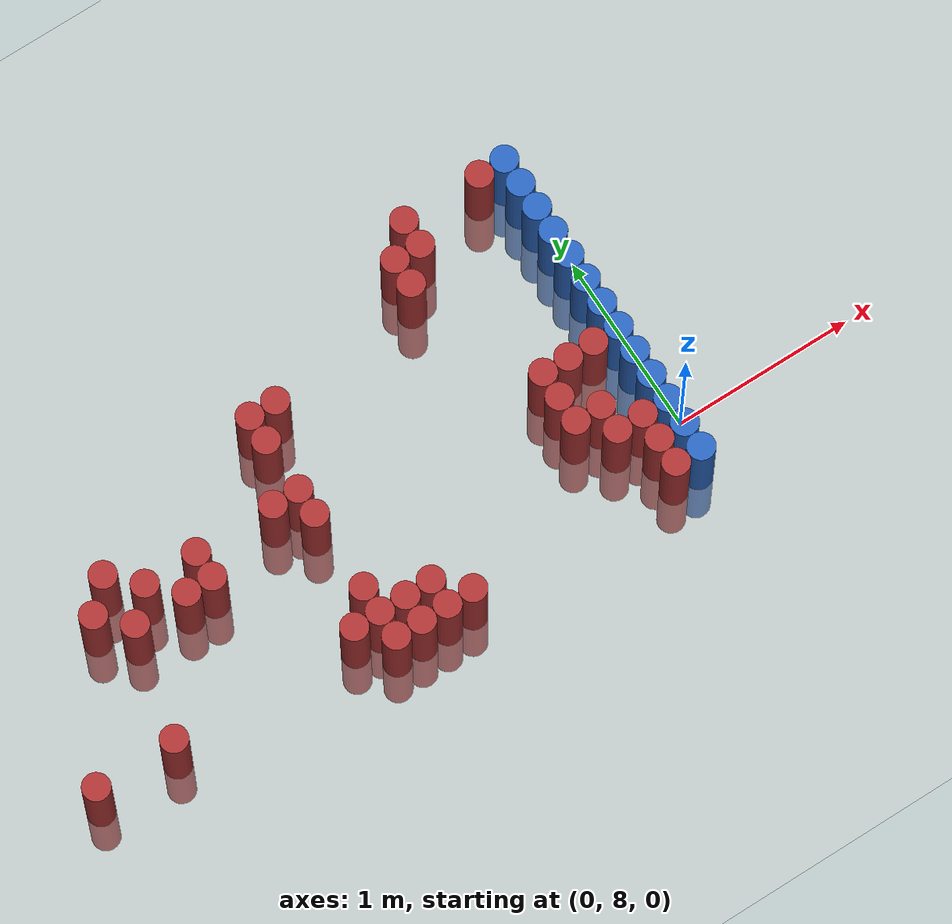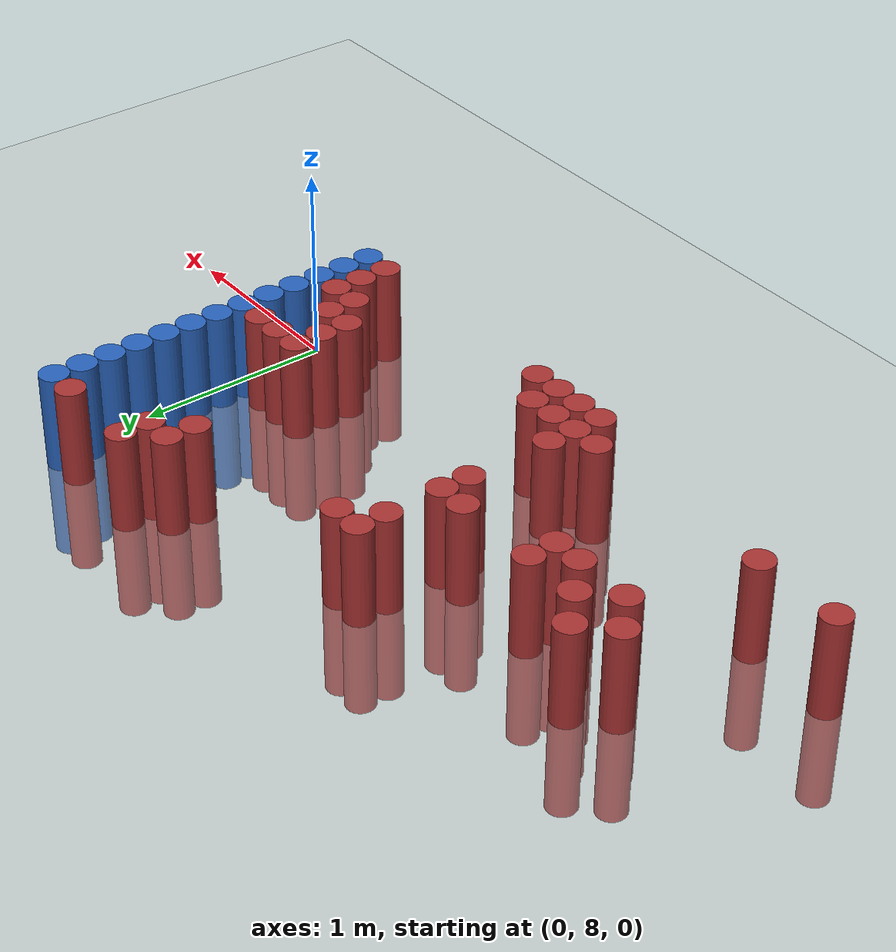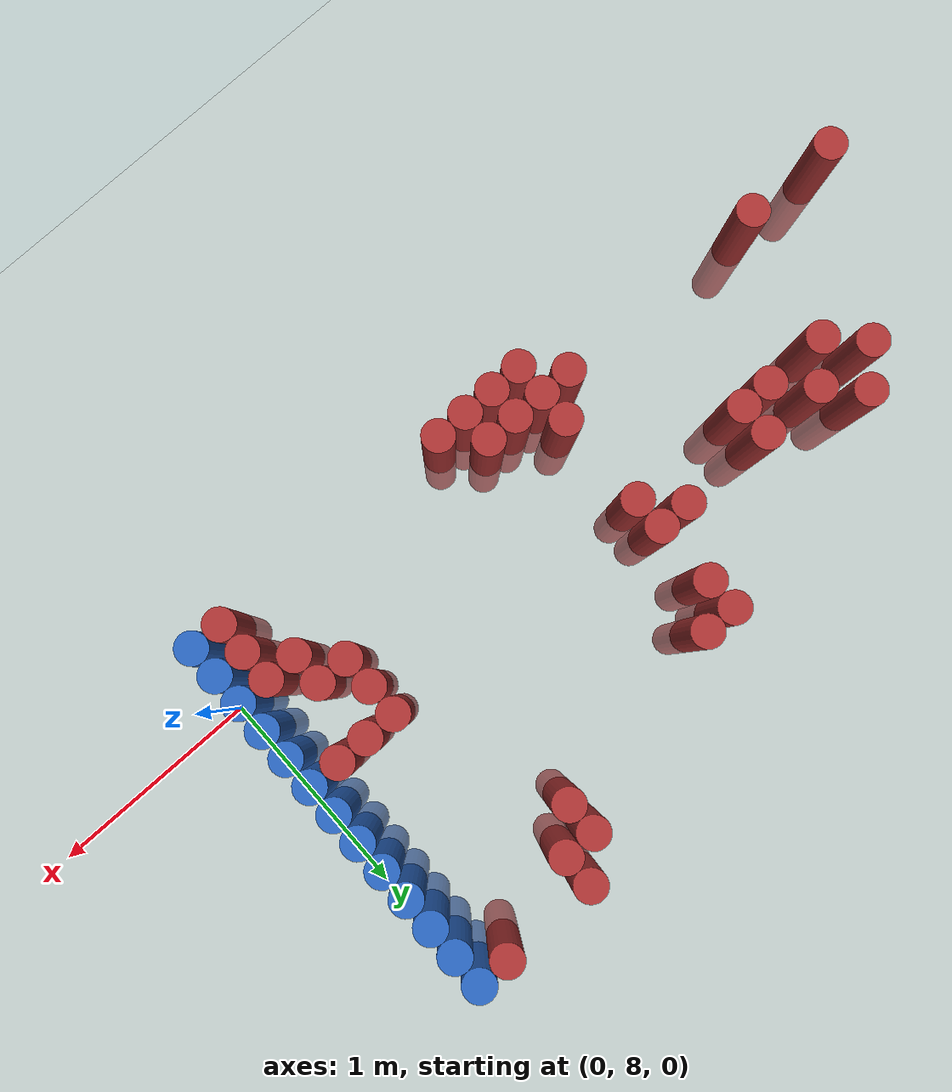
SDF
<sdf version="1.6">
 <world name="default">
  <model name="ground_plane">
   <static>1</static>
   <link name="link">
    <collision name="collision">
     <geometry><plane><normal>0 0 1</normal><size>100 100</size></plane></geometry>
     <surface><friction><ode><mu>100</mu><mu2>50</mu2></ode></friction></surface>
    </collision>
    <visual name="visual">
     <cast_shadows>0</cast_shadows>
     <geometry><plane><normal>0 0 1</normal><size>100 100</size></plane></geometry>
     <material>
      <script><uri>file://media/materials/scripts/gazebo.material</uri><name>Gazebo/Grey</name></script>
     </material>
    </visual>
   </link>
  </model>
  <model name="unit_cylinder_152">
   <static>1</static>
   <pose>-3.525000 7.875000 0.000000 0.000000 0.000000 0.000000</pose>
   <link name="link">
    <inertial>
     <mass>1</mass>
     <inertia><ixx>0.145833</ixx><ixy>0</ixy><ixz>0</ixz><iyy>0.145833</iyy><iyz>0</iyz><izz>0.125</izz></inertia>
    </inertial>
    <collision name="collision">
     <geometry><cylinder><radius>0.075000</radius><length>1</length></cylinder></geometry>
    </collision>
    <visual name="visual">
     <geometry><cylinder><radius>0.075000</radius><length>1</length></cylinder></geometry>
     <material>
      <ambient>0.648000 0.192000 0.192000 1</ambient>
      <diffuse>0.648000 0.192000 0.192000 1</diffuse>
     </material>
     <material>
      <script><name>Gazebo/Grey</name><uri>file://media/materials/scripts/gazebo.material</uri></script>
     </material>
    </visual>
   </link>
  </model>
  <model name="unit_cylinder_164">
   <static>1</static>
   <pose>-3.075000 7.875000 0.000000 0.000000 0.000000 0.000000</pose>
   <link name="link">
    <inertial>
     <mass>1</mass>
     <inertia><ixx>0.145833</ixx><ixy>0</ixy><ixz>0</ixz><iyy>0.145833</iyy><iyz>0</iyz><izz>0.125</izz></inertia>
    </inertial>
    <collision name="collision">
     <geometry><cylinder><radius>0.075000</radius><length>1</length></cylinder></geometry>
    </collision>
    <visual name="visual">
     <geometry><cylinder><radius>0.075000</radius><length>1</length></cylinder></geometry>
     <material>
      <ambient>0.648000 0.192000 0.192000 1</ambient>
      <diffuse>0.648000 0.192000 0.192000 1</diffuse>
     </material>
     <material>
      <script><name>Gazebo/Grey</name><uri>file://media/materials/scripts/gazebo.material</uri></script>
     </material>
    </visual>
   </link>
  </model>
  <model name="unit_cylinder_165">
   <static>1</static>
   <pose>-3.075000 8.625000 0.000000 0.000000 0.000000 0.000000</pose>
   <link name="link">
    <inertial>
     <mass>1</mass>
     <inertia><ixx>0.145833</ixx><ixy>0</ixy><ixz>0</ixz><iyy>0.145833</iyy><iyz>0</iyz><izz>0.125</izz></inertia>
    </inertial>
    <collision name="collision">
     <geometry><cylinder><radius>0.075000</radius><length>1</length></cylinder></geometry>
    </collision>
    <visual name="visual">
     <geometry><cylinder><radius>0.075000</radius><length>1</length></cylinder></geometry>
     <material>
      <ambient>0.648000 0.192000 0.192000 1</ambient>
      <diffuse>0.648000 0.192000 0.192000 1</diffuse>
     </material>
     <material>
      <script><name>Gazebo/Grey</name><uri>file://media/materials/scripts/gazebo.material</uri></script>
     </material>
    </visual>
   </link>
  </model>
  <model name="unit_cylinder_167">
   <static>1</static>
   <pose>-2.925000 8.475000 0.000000 0.000000 0.000000 0.000000</pose>
   <link name="link">
    <inertial>
     <mass>1</mass>
     <inertia><ixx>0.145833</ixx><ixy>0</ixy><ixz>0</ixz><iyy>0.145833</iyy><iyz>0</iyz><izz>0.125</izz></inertia>
    </inertial>
    <collision name="collision">
     <geometry><cylinder><radius>0.075000</radius><length>1</length></cylinder></geometry>
    </collision>
    <visual name="visual">
     <geometry><cylinder><radius>0.075000</radius><length>1</length></cylinder></geometry>
     <material>
      <ambient>0.648000 0.192000 0.192000 1</ambient>
      <diffuse>0.648000 0.192000 0.192000 1</diffuse>
     </material>
     <material>
      <script><name>Gazebo/Grey</name><uri>file://media/materials/scripts/gazebo.material</uri></script>
     </material>
    </visual>
   </link>
  </model>
  <model name="unit_cylinder_168">
   <static>1</static>
   <pose>-2.925000 8.775000 0.000000 0.000000 0.000000 0.000000</pose>
   <link name="link">
    <inertial>
     <mass>1</mass>
     <inertia><ixx>0.145833</ixx><ixy>0</ixy><ixz>0</ixz><iyy>0.145833</iyy><iyz>0</iyz><izz>0.125</izz></inertia>
    </inertial>
    <collision name="collision">
     <geometry><cylinder><radius>0.075000</radius><length>1</length></cylinder></geometry>
    </collision>
    <visual name="visual">
     <geometry><cylinder><radius>0.075000</radius><length>1</length></cylinder></geometry>
     <material>
      <ambient>0.648000 0.192000 0.192000 1</ambient>
      <diffuse>0.648000 0.192000 0.192000 1</diffuse>
     </material>
     <material>
      <script><name>Gazebo/Grey</name><uri>file://media/materials/scripts/gazebo.material</uri></script>
     </material>
    </visual>
   </link>
  </model>
  <model name="unit_cylinder_169">
   <static>1</static>
   <pose>-2.775000 8.625000 0.000000 0.000000 0.000000 0.000000</pose>
   <link name="link">
    <inertial>
     <mass>1</mass>
     <inertia><ixx>0.145833</ixx><ixy>0</ixy><ixz>0</ixz><iyy>0.145833</iyy><iyz>0</iyz><izz>0.125</izz></inertia>
    </inertial>
    <collision name="collision">
     <geometry><cylinder><radius>0.075000</radius><length>1</length></cylinder></geometry>
    </collision>
    <visual name="visual">
     <geometry><cylinder><radius>0.075000</radius><length>1</length></cylinder></geometry>
     <material>
      <ambient>0.648000 0.192000 0.192000 1</ambient>
      <diffuse>0.648000 0.192000 0.192000 1</diffuse>
     </material>
     <material>
      <script><name>Gazebo/Grey</name><uri>file://media/materials/scripts/gazebo.material</uri></script>
     </material>
    </visual>
   </link>
  </model>
  <model name="unit_cylinder_170">
   <static>1</static>
   <pose>-2.625000 8.475000 0.000000 0.000000 0.000000 0.000000</pose>
   <link name="link">
    <inertial>
     <mass>1</mass>
     <inertia><ixx>0.145833</ixx><ixy>0</ixy><ixz>0</ixz><iyy>0.145833</iyy><iyz>0</iyz><izz>0.125</izz></inertia>
    </inertial>
    <collision name="collision">
     <geometry><cylinder><radius>0.075000</radius><length>1</length></cylinder></geometry>
    </collision>
    <visual name="visual">
     <geometry><cylinder><radius>0.075000</radius><length>1</length></cylinder></geometry>
     <material>
      <ambient>0.648000 0.192000 0.192000 1</ambient>
      <diffuse>0.648000 0.192000 0.192000 1</diffuse>
     </material>
     <material>
      <script><name>Gazebo/Grey</name><uri>file://media/materials/scripts/gazebo.material</uri></script>
     </material>
    </visual>
   </link>
  </model>
  <model name="unit_cylinder_171">
   <static>1</static>
   <pose>-2.475000 8.475000 0.000000 0.000000 0.000000 0.000000</pose>
   <link name="link">
    <inertial>
     <mass>1</mass>
     <inertia><ixx>0.145833</ixx><ixy>0</ixy><ixz>0</ixz><iyy>0.145833</iyy><iyz>0</iyz><izz>0.125</izz></inertia>
    </inertial>
    <collision name="collision">
     <geometry><cylinder><radius>0.075000</radius><length>1</length></cylinder></geometry>
    </collision>
    <visual name="visual">
     <geometry><cylinder><radius>0.075000</radius><length>1</length></cylinder></geometry>
     <material>
      <ambient>0.648000 0.192000 0.192000 1</ambient>
      <diffuse>0.648000 0.192000 0.192000 1</diffuse>
     </material>
     <material>
      <script><name>Gazebo/Grey</name><uri>file://media/materials/scripts/gazebo.material</uri></script>
     </material>
    </visual>
   </link>
  </model>
  <model name="unit_cylinder_172">
   <static>1</static>
   <pose>-2.475000 8.625000 0.000000 0.000000 0.000000 0.000000</pose>
   <link name="link">
    <inertial>
     <mass>1</mass>
     <inertia><ixx>0.145833</ixx><ixy>0</ixy><ixz>0</ixz><iyy>0.145833</iyy><iyz>0</iyz><izz>0.125</izz></inertia>
    </inertial>
    <collision name="collision">
     <geometry><cylinder><radius>0.075000</radius><length>1</length></cylinder></geometry>
    </collision>
    <visual name="visual">
     <geometry><cylinder><radius>0.075000</radius><length>1</length></cylinder></geometry>
     <material>
      <ambient>0.648000 0.192000 0.192000 1</ambient>
      <diffuse>0.648000 0.192000 0.192000 1</diffuse>
     </material>
     <material>
      <script><name>Gazebo/Grey</name><uri>file://media/materials/scripts/gazebo.material</uri></script>
     </material>
    </visual>
   </link>
  </model>
  <model name="unit_cylinder_173">
   <static>1</static>
   <pose>-2.025000 7.875000 0.000000 0.000000 0.000000 0.000000</pose>
   <link name="link">
    <inertial>
     <mass>1</mass>
     <inertia><ixx>0.145833</ixx><ixy>0</ixy><ixz>0</ixz><iyy>0.145833</iyy><iyz>0</iyz><izz>0.125</izz></inertia>
    </inertial>
    <collision name="collision">
     <geometry><cylinder><radius>0.075000</radius><length>1</length></cylinder></geometry>
    </collision>
    <visual name="visual">
     <geometry><cylinder><radius>0.075000</radius><length>1</length></cylinder></geometry>
     <material>
      <ambient>0.648000 0.192000 0.192000 1</ambient>
      <diffuse>0.648000 0.192000 0.192000 1</diffuse>
     </material>
     <material>
      <script><name>Gazebo/Grey</name><uri>file://media/materials/scripts/gazebo.material</uri></script>
     </material>
    </visual>
   </link>
  </model>
  <model name="unit_cylinder_174">
   <static>1</static>
   <pose>-2.025000 8.625000 0.000000 0.000000 0.000000 0.000000</pose>
   <link name="link">
    <inertial>
     <mass>1</mass>
     <inertia><ixx>0.145833</ixx><ixy>0</ixy><ixz>0</ixz><iyy>0.145833</iyy><iyz>0</iyz><izz>0.125</izz></inertia>
    </inertial>
    <collision name="collision">
     <geometry><cylinder><radius>0.075000</radius><length>1</length></cylinder></geometry>
    </collision>
    <visual name="visual">
     <geometry><cylinder><radius>0.075000</radius><length>1</length></cylinder></geometry>
     <material>
      <ambient>0.648000 0.192000 0.192000 1</ambient>
      <diffuse>0.648000 0.192000 0.192000 1</diffuse>
     </material>
     <material>
      <script><name>Gazebo/Grey</name><uri>file://media/materials/scripts/gazebo.material</uri></script>
     </material>
    </visual>
   </link>
  </model>
  <model name="unit_cylinder_178">
   <static>1</static>
   <pose>-1.875000 7.725000 0.000000 0.000000 0.000000 0.000000</pose>
   <link name="link">
    <inertial>
     <mass>1</mass>
     <inertia><ixx>0.145833</ixx><ixy>0</ixy><ixz>0</ixz><iyy>0.145833</iyy><iyz>0</iyz><izz>0.125</izz></inertia>
    </inertial>
    <collision name="collision">
     <geometry><cylinder><radius>0.075000</radius><length>1</length></cylinder></geometry>
    </collision>
    <visual name="visual">
     <geometry><cylinder><radius>0.075000</radius><length>1</length></cylinder></geometry>
     <material>
      <ambient>0.648000 0.192000 0.192000 1</ambient>
      <diffuse>0.648000 0.192000 0.192000 1</diffuse>
     </material>
     <material>
      <script><name>Gazebo/Grey</name><uri>file://media/materials/scripts/gazebo.material</uri></script>
     </material>
    </visual>
   </link>
  </model>
  <model name="unit_cylinder_179">
   <static>1</static>
   <pose>-1.875000 7.875000 0.000000 0.000000 0.000000 0.000000</pose>
   <link name="link">
    <inertial>
     <mass>1</mass>
     <inertia><ixx>0.145833</ixx><ixy>0</ixy><ixz>0</ixz><iyy>0.145833</iyy><iyz>0</iyz><izz>0.125</izz></inertia>
    </inertial>
    <collision name="collision">
     <geometry><cylinder><radius>0.075000</radius><length>1</length></cylinder></geometry>
    </collision>
    <visual name="visual">
     <geometry><cylinder><radius>0.075000</radius><length>1</length></cylinder></geometry>
     <material>
      <ambient>0.648000 0.192000 0.192000 1</ambient>
      <diffuse>0.648000 0.192000 0.192000 1</diffuse>
     </material>
     <material>
      <script><name>Gazebo/Grey</name><uri>file://media/materials/scripts/gazebo.material</uri></script>
     </material>
    </visual>
   </link>
  </model>
  <model name="unit_cylinder_180">
   <static>1</static>
   <pose>-1.875000 8.025000 0.000000 0.000000 0.000000 0.000000</pose>
   <link name="link">
    <inertial>
     <mass>1</mass>
     <inertia><ixx>0.145833</ixx><ixy>0</ixy><ixz>0</ixz><iyy>0.145833</iyy><iyz>0</iyz><izz>0.125</izz></inertia>
    </inertial>
    <collision name="collision">
     <geometry><cylinder><radius>0.075000</radius><length>1</length></cylinder></geometry>
    </collision>
    <visual name="visual">
     <geometry><cylinder><radius>0.075000</radius><length>1</length></cylinder></geometry>
     <material>
      <ambient>0.648000 0.192000 0.192000 1</ambient>
      <diffuse>0.648000 0.192000 0.192000 1</diffuse>
     </material>
     <material>
      <script><name>Gazebo/Grey</name><uri>file://media/materials/scripts/gazebo.material</uri></script>
     </material>
    </visual>
   </link>
  </model>
  <model name="unit_cylinder_181">
   <static>1</static>
   <pose>-1.875000 8.475000 0.000000 0.000000 0.000000 0.000000</pose>
   <link name="link">
    <inertial>
     <mass>1</mass>
     <inertia><ixx>0.145833</ixx><ixy>0</ixy><ixz>0</ixz><iyy>0.145833</iyy><iyz>0</iyz><izz>0.125</izz></inertia>
    </inertial>
    <collision name="collision">
     <geometry><cylinder><radius>0.075000</radius><length>1</length></cylinder></geometry>
    </collision>
    <visual name="visual">
     <geometry><cylinder><radius>0.075000</radius><length>1</length></cylinder></geometry>
     <material>
      <ambient>0.648000 0.192000 0.192000 1</ambient>
      <diffuse>0.648000 0.192000 0.192000 1</diffuse>
     </material>
     <material>
      <script><name>Gazebo/Grey</name><uri>file://media/materials/scripts/gazebo.material</uri></script>
     </material>
    </visual>
   </link>
  </model>
  <model name="unit_cylinder_182">
   <static>1</static>
   <pose>-1.875000 8.625000 0.000000 0.000000 0.000000 0.000000</pose>
   <link name="link">
    <inertial>
     <mass>1</mass>
     <inertia><ixx>0.145833</ixx><ixy>0</ixy><ixz>0</ixz><iyy>0.145833</iyy><iyz>0</iyz><izz>0.125</izz></inertia>
    </inertial>
    <collision name="collision">
     <geometry><cylinder><radius>0.075000</radius><length>1</length></cylinder></geometry>
    </collision>
    <visual name="visual">
     <geometry><cylinder><radius>0.075000</radius><length>1</length></cylinder></geometry>
     <material>
      <ambient>0.648000 0.192000 0.192000 1</ambient>
      <diffuse>0.648000 0.192000 0.192000 1</diffuse>
     </material>
     <material>
      <script><name>Gazebo/Grey</name><uri>file://media/materials/scripts/gazebo.material</uri></script>
     </material>
    </visual>
   </link>
  </model>
  <model name="unit_cylinder_183">
   <static>1</static>
   <pose>-1.875000 8.925000 0.000000 0.000000 0.000000 0.000000</pose>
   <link name="link">
    <inertial>
     <mass>1</mass>
     <inertia><ixx>0.145833</ixx><ixy>0</ixy><ixz>0</ixz><iyy>0.145833</iyy><iyz>0</iyz><izz>0.125</izz></inertia>
    </inertial>
    <collision name="collision">
     <geometry><cylinder><radius>0.075000</radius><length>1</length></cylinder></geometry>
    </collision>
    <visual name="visual">
     <geometry><cylinder><radius>0.075000</radius><length>1</length></cylinder></geometry>
     <material>
      <ambient>0.648000 0.192000 0.192000 1</ambient>
      <diffuse>0.648000 0.192000 0.192000 1</diffuse>
     </material>
     <material>
      <script><name>Gazebo/Grey</name><uri>file://media/materials/scripts/gazebo.material</uri></script>
     </material>
    </visual>
   </link>
  </model>
  <model name="unit_cylinder_184">
   <static>1</static>
   <pose>-1.875000 9.075000 0.000000 0.000000 0.000000 0.000000</pose>
   <link name="link">
    <inertial>
     <mass>1</mass>
     <inertia><ixx>0.145833</ixx><ixy>0</ixy><ixz>0</ixz><iyy>0.145833</iyy><iyz>0</iyz><izz>0.125</izz></inertia>
    </inertial>
    <collision name="collision">
     <geometry><cylinder><radius>0.075000</radius><length>1</length></cylinder></geometry>
    </collision>
    <visual name="visual">
     <geometry><cylinder><radius>0.075000</radius><length>1</length></cylinder></geometry>
     <material>
      <ambient>0.648000 0.192000 0.192000 1</ambient>
      <diffuse>0.648000 0.192000 0.192000 1</diffuse>
     </material>
     <material>
      <script><name>Gazebo/Grey</name><uri>file://media/materials/scripts/gazebo.material</uri></script>
     </material>
    </visual>
   </link>
  </model>
  <model name="unit_cylinder_189">
   <static>1</static>
   <pose>-1.725000 7.725000 0.000000 0.000000 0.000000 0.000000</pose>
   <link name="link">
    <inertial>
     <mass>1</mass>
     <inertia><ixx>0.145833</ixx><ixy>0</ixy><ixz>0</ixz><iyy>0.145833</iyy><iyz>0</iyz><izz>0.125</izz></inertia>
    </inertial>
    <collision name="collision">
     <geometry><cylinder><radius>0.075000</radius><length>1</length></cylinder></geometry>
    </collision>
    <visual name="visual">
     <geometry><cylinder><radius>0.075000</radius><length>1</length></cylinder></geometry>
     <material>
      <ambient>0.648000 0.192000 0.192000 1</ambient>
      <diffuse>0.648000 0.192000 0.192000 1</diffuse>
     </material>
     <material>
      <script><name>Gazebo/Grey</name><uri>file://media/materials/scripts/gazebo.material</uri></script>
     </material>
    </visual>
   </link>
  </model>
  <model name="unit_cylinder_190">
   <static>1</static>
   <pose>-1.725000 7.875000 0.000000 0.000000 0.000000 0.000000</pose>
   <link name="link">
    <inertial>
     <mass>1</mass>
     <inertia><ixx>0.145833</ixx><ixy>0</ixy><ixz>0</ixz><iyy>0.145833</iyy><iyz>0</iyz><izz>0.125</izz></inertia>
    </inertial>
    <collision name="collision">
     <geometry><cylinder><radius>0.075000</radius><length>1</length></cylinder></geometry>
    </collision>
    <visual name="visual">
     <geometry><cylinder><radius>0.075000</radius><length>1</length></cylinder></geometry>
     <material>
      <ambient>0.648000 0.192000 0.192000 1</ambient>
      <diffuse>0.648000 0.192000 0.192000 1</diffuse>
     </material>
     <material>
      <script><name>Gazebo/Grey</name><uri>file://media/materials/scripts/gazebo.material</uri></script>
     </material>
    </visual>
   </link>
  </model>
  <model name="unit_cylinder_191">
   <static>1</static>
   <pose>-1.725000 9.075000 0.000000 0.000000 0.000000 0.000000</pose>
   <link name="link">
    <inertial>
     <mass>1</mass>
     <inertia><ixx>0.145833</ixx><ixy>0</ixy><ixz>0</ixz><iyy>0.145833</iyy><iyz>0</iyz><izz>0.125</izz></inertia>
    </inertial>
    <collision name="collision">
     <geometry><cylinder><radius>0.075000</radius><length>1</length></cylinder></geometry>
    </collision>
    <visual name="visual">
     <geometry><cylinder><radius>0.075000</radius><length>1</length></cylinder></geometry>
     <material>
      <ambient>0.648000 0.192000 0.192000 1</ambient>
      <diffuse>0.648000 0.192000 0.192000 1</diffuse>
     </material>
     <material>
      <script><name>Gazebo/Grey</name><uri>file://media/materials/scripts/gazebo.material</uri></script>
     </material>
    </visual>
   </link>
  </model>
  <model name="unit_cylinder_194">
   <static>1</static>
   <pose>-1.575000 7.725000 0.000000 0.000000 0.000000 0.000000</pose>
   <link name="link">
    <inertial>
     <mass>1</mass>
     <inertia><ixx>0.145833</ixx><ixy>0</ixy><ixz>0</ixz><iyy>0.145833</iyy><iyz>0</iyz><izz>0.125</izz></inertia>
    </inertial>
    <collision name="collision">
     <geometry><cylinder><radius>0.075000</radius><length>1</length></cylinder></geometry>
    </collision>
    <visual name="visual">
     <geometry><cylinder><radius>0.075000</radius><length>1</length></cylinder></geometry>
     <material>
      <ambient>0.648000 0.192000 0.192000 1</ambient>
      <diffuse>0.648000 0.192000 0.192000 1</diffuse>
     </material>
     <material>
      <script><name>Gazebo/Grey</name><uri>file://media/materials/scripts/gazebo.material</uri></script>
     </material>
    </visual>
   </link>
  </model>
  <model name="unit_cylinder_195">
   <static>1</static>
   <pose>-1.575000 7.875000 0.000000 0.000000 0.000000 0.000000</pose>
   <link name="link">
    <inertial>
     <mass>1</mass>
     <inertia><ixx>0.145833</ixx><ixy>0</ixy><ixz>0</ixz><iyy>0.145833</iyy><iyz>0</iyz><izz>0.125</izz></inertia>
    </inertial>
    <collision name="collision">
     <geometry><cylinder><radius>0.075000</radius><length>1</length></cylinder></geometry>
    </collision>
    <visual name="visual">
     <geometry><cylinder><radius>0.075000</radius><length>1</length></cylinder></geometry>
     <material>
      <ambient>0.648000 0.192000 0.192000 1</ambient>
      <diffuse>0.648000 0.192000 0.192000 1</diffuse>
     </material>
     <material>
      <script><name>Gazebo/Grey</name><uri>file://media/materials/scripts/gazebo.material</uri></script>
     </material>
    </visual>
   </link>
  </model>
  <model name="unit_cylinder_198">
   <static>1</static>
   <pose>-1.425000 7.725000 0.000000 0.000000 0.000000 0.000000</pose>
   <link name="link">
    <inertial>
     <mass>1</mass>
     <inertia><ixx>0.145833</ixx><ixy>0</ixy><ixz>0</ixz><iyy>0.145833</iyy><iyz>0</iyz><izz>0.125</izz></inertia>
    </inertial>
    <collision name="collision">
     <geometry><cylinder><radius>0.075000</radius><length>1</length></cylinder></geometry>
    </collision>
    <visual name="visual">
     <geometry><cylinder><radius>0.075000</radius><length>1</length></cylinder></geometry>
     <material>
      <ambient>0.648000 0.192000 0.192000 1</ambient>
      <diffuse>0.648000 0.192000 0.192000 1</diffuse>
     </material>
     <material>
      <script><name>Gazebo/Grey</name><uri>file://media/materials/scripts/gazebo.material</uri></script>
     </material>
    </visual>
   </link>
  </model>
  <model name="unit_cylinder_202">
   <static>1</static>
   <pose>-0.825000 9.225000 0.000000 0.000000 0.000000 0.000000</pose>
   <link name="link">
    <inertial>
     <mass>1</mass>
     <inertia><ixx>0.145833</ixx><ixy>0</ixy><ixz>0</ixz><iyy>0.145833</iyy><iyz>0</iyz><izz>0.125</izz></inertia>
    </inertial>
    <collision name="collision">
     <geometry><cylinder><radius>0.075000</radius><length>1</length></cylinder></geometry>
    </collision>
    <visual name="visual">
     <geometry><cylinder><radius>0.075000</radius><length>1</length></cylinder></geometry>
     <material>
      <ambient>0.648000 0.192000 0.192000 1</ambient>
      <diffuse>0.648000 0.192000 0.192000 1</diffuse>
     </material>
     <material>
      <script><name>Gazebo/Grey</name><uri>file://media/materials/scripts/gazebo.material</uri></script>
     </material>
    </visual>
   </link>
  </model>
  <model name="unit_cylinder_203">
   <static>1</static>
   <pose>-0.825000 9.375000 0.000000 0.000000 0.000000 0.000000</pose>
   <link name="link">
    <inertial>
     <mass>1</mass>
     <inertia><ixx>0.145833</ixx><ixy>0</ixy><ixz>0</ixz><iyy>0.145833</iyy><iyz>0</iyz><izz>0.125</izz></inertia>
    </inertial>
    <collision name="collision">
     <geometry><cylinder><radius>0.075000</radius><length>1</length></cylinder></geometry>
    </collision>
    <visual name="visual">
     <geometry><cylinder><radius>0.075000</radius><length>1</length></cylinder></geometry>
     <material>
      <ambient>0.648000 0.192000 0.192000 1</ambient>
      <diffuse>0.648000 0.192000 0.192000 1</diffuse>
     </material>
     <material>
      <script><name>Gazebo/Grey</name><uri>file://media/materials/scripts/gazebo.material</uri></script>
     </material>
    </visual>
   </link>
  </model>
  <model name="unit_cylinder_204">
   <static>1</static>
   <pose>-0.675000 9.375000 0.000000 0.000000 0.000000 0.000000</pose>
   <link name="link">
    <inertial>
     <mass>1</mass>
     <inertia><ixx>0.145833</ixx><ixy>0</ixy><ixz>0</ixz><iyy>0.145833</iyy><iyz>0</iyz><izz>0.125</izz></inertia>
    </inertial>
    <collision name="collision">
     <geometry><cylinder><radius>0.075000</radius><length>1</length></cylinder></geometry>
    </collision>
    <visual name="visual">
     <geometry><cylinder><radius>0.075000</radius><length>1</length></cylinder></geometry>
     <material>
      <ambient>0.648000 0.192000 0.192000 1</ambient>
      <diffuse>0.648000 0.192000 0.192000 1</diffuse>
     </material>
     <material>
      <script><name>Gazebo/Grey</name><uri>file://media/materials/scripts/gazebo.material</uri></script>
     </material>
    </visual>
   </link>
  </model>
  <model name="unit_cylinder_205">
   <static>1</static>
   <pose>-0.675000 9.525000 0.000000 0.000000 0.000000 0.000000</pose>
   <link name="link">
    <inertial>
     <mass>1</mass>
     <inertia><ixx>0.145833</ixx><ixy>0</ixy><ixz>0</ixz><iyy>0.145833</iyy><iyz>0</iyz><izz>0.125</izz></inertia>
    </inertial>
    <collision name="collision">
     <geometry><cylinder><radius>0.075000</radius><length>1</length></cylinder></geometry>
    </collision>
    <visual name="visual">
     <geometry><cylinder><radius>0.075000</radius><length>1</length></cylinder></geometry>
     <material>
      <ambient>0.648000 0.192000 0.192000 1</ambient>
      <diffuse>0.648000 0.192000 0.192000 1</diffuse>
     </material>
     <material>
      <script><name>Gazebo/Grey</name><uri>file://media/materials/scripts/gazebo.material</uri></script>
     </material>
    </visual>
   </link>
  </model>
  <model name="unit_cylinder_206">
   <static>1</static>
   <pose>-0.525000 8.175000 0.000000 0.000000 0.000000 0.000000</pose>
   <link name="link">
    <inertial>
     <mass>1</mass>
     <inertia><ixx>0.145833</ixx><ixy>0</ixy><ixz>0</ixz><iyy>0.145833</iyy><iyz>0</iyz><izz>0.125</izz></inertia>
    </inertial>
    <collision name="collision">
     <geometry><cylinder><radius>0.075000</radius><length>1</length></cylinder></geometry>
    </collision>
    <visual name="visual">
     <geometry><cylinder><radius>0.075000</radius><length>1</length></cylinder></geometry>
     <material>
      <ambient>0.648000 0.192000 0.192000 1</ambient>
      <diffuse>0.648000 0.192000 0.192000 1</diffuse>
     </material>
     <material>
      <script><name>Gazebo/Grey</name><uri>file://media/materials/scripts/gazebo.material</uri></script>
     </material>
    </visual>
   </link>
  </model>
  <model name="unit_cylinder_207">
   <static>1</static>
   <pose>-0.525000 8.325000 0.000000 0.000000 0.000000 0.000000</pose>
   <link name="link">
    <inertial>
     <mass>1</mass>
     <inertia><ixx>0.145833</ixx><ixy>0</ixy><ixz>0</ixz><iyy>0.145833</iyy><iyz>0</iyz><izz>0.125</izz></inertia>
    </inertial>
    <collision name="collision">
     <geometry><cylinder><radius>0.075000</radius><length>1</length></cylinder></geometry>
    </collision>
    <visual name="visual">
     <geometry><cylinder><radius>0.075000</radius><length>1</length></cylinder></geometry>
     <material>
      <ambient>0.648000 0.192000 0.192000 1</ambient>
      <diffuse>0.648000 0.192000 0.192000 1</diffuse>
     </material>
     <material>
      <script><name>Gazebo/Grey</name><uri>file://media/materials/scripts/gazebo.material</uri></script>
     </material>
    </visual>
   </link>
  </model>
  <model name="unit_cylinder_208">
   <static>1</static>
   <pose>-0.525000 8.475000 0.000000 0.000000 0.000000 0.000000</pose>
   <link name="link">
    <inertial>
     <mass>1</mass>
     <inertia><ixx>0.145833</ixx><ixy>0</ixy><ixz>0</ixz><iyy>0.145833</iyy><iyz>0</iyz><izz>0.125</izz></inertia>
    </inertial>
    <collision name="collision">
     <geometry><cylinder><radius>0.075000</radius><length>1</length></cylinder></geometry>
    </collision>
    <visual name="visual">
     <geometry><cylinder><radius>0.075000</radius><length>1</length></cylinder></geometry>
     <material>
      <ambient>0.648000 0.192000 0.192000 1</ambient>
      <diffuse>0.648000 0.192000 0.192000 1</diffuse>
     </material>
     <material>
      <script><name>Gazebo/Grey</name><uri>file://media/materials/scripts/gazebo.material</uri></script>
     </material>
    </visual>
   </link>
  </model>
  <model name="unit_cylinder_211">
   <static>1</static>
   <pose>-0.375000 8.025000 0.000000 0.000000 0.000000 0.000000</pose>
   <link name="link">
    <inertial>
     <mass>1</mass>
     <inertia><ixx>0.145833</ixx><ixy>0</ixy><ixz>0</ixz><iyy>0.145833</iyy><iyz>0</iyz><izz>0.125</izz></inertia>
    </inertial>
    <collision name="collision">
     <geometry><cylinder><radius>0.075000</radius><length>1</length></cylinder></geometry>
    </collision>
    <visual name="visual">
     <geometry><cylinder><radius>0.075000</radius><length>1</length></cylinder></geometry>
     <material>
      <ambient>0.648000 0.192000 0.192000 1</ambient>
      <diffuse>0.648000 0.192000 0.192000 1</diffuse>
     </material>
     <material>
      <script><name>Gazebo/Grey</name><uri>file://media/materials/scripts/gazebo.material</uri></script>
     </material>
    </visual>
   </link>
  </model>
  <model name="unit_cylinder_212">
   <static>1</static>
   <pose>-0.375000 8.175000 0.000000 0.000000 0.000000 0.000000</pose>
   <link name="link">
    <inertial>
     <mass>1</mass>
     <inertia><ixx>0.145833</ixx><ixy>0</ixy><ixz>0</ixz><iyy>0.145833</iyy><iyz>0</iyz><izz>0.125</izz></inertia>
    </inertial>
    <collision name="collision">
     <geometry><cylinder><radius>0.075000</radius><length>1</length></cylinder></geometry>
    </collision>
    <visual name="visual">
     <geometry><cylinder><radius>0.075000</radius><length>1</length></cylinder></geometry>
     <material>
      <ambient>0.648000 0.192000 0.192000 1</ambient>
      <diffuse>0.648000 0.192000 0.192000 1</diffuse>
     </material>
     <material>
      <script><name>Gazebo/Grey</name><uri>file://media/materials/scripts/gazebo.material</uri></script>
     </material>
    </visual>
   </link>
  </model>
  <model name="unit_cylinder_213">
   <static>1</static>
   <pose>-0.375000 8.475000 0.000000 0.000000 0.000000 0.000000</pose>
   <link name="link">
    <inertial>
     <mass>1</mass>
     <inertia><ixx>0.145833</ixx><ixy>0</ixy><ixz>0</ixz><iyy>0.145833</iyy><iyz>0</iyz><izz>0.125</izz></inertia>
    </inertial>
    <collision name="collision">
     <geometry><cylinder><radius>0.075000</radius><length>1</length></cylinder></geometry>
    </collision>
    <visual name="visual">
     <geometry><cylinder><radius>0.075000</radius><length>1</length></cylinder></geometry>
     <material>
      <ambient>0.648000 0.192000 0.192000 1</ambient>
      <diffuse>0.648000 0.192000 0.192000 1</diffuse>
     </material>
     <material>
      <script><name>Gazebo/Grey</name><uri>file://media/materials/scripts/gazebo.material</uri></script>
     </material>
    </visual>
   </link>
  </model>
  <model name="unit_cylinder_226">
   <static>1</static>
   <pose>-0.225000 7.725000 0.000000 0.000000 0.000000 0.000000</pose>
   <link name="link">
    <inertial>
     <mass>1</mass>
     <inertia><ixx>0.145833</ixx><ixy>0</ixy><ixz>0</ixz><iyy>0.145833</iyy><iyz>0</iyz><izz>0.125</izz></inertia>
    </inertial>
    <collision name="collision">
     <geometry><cylinder><radius>0.075000</radius><length>1</length></cylinder></geometry>
    </collision>
    <visual name="visual">
     <geometry><cylinder><radius>0.075000</radius><length>1</length></cylinder></geometry>
     <material>
      <ambient>0.648000 0.192000 0.192000 1</ambient>
      <diffuse>0.648000 0.192000 0.192000 1</diffuse>
     </material>
     <material>
      <script><name>Gazebo/Grey</name><uri>file://media/materials/scripts/gazebo.material</uri></script>
     </material>
    </visual>
   </link>
  </model>
  <model name="unit_cylinder_227">
   <static>1</static>
   <pose>-0.225000 7.875000 0.000000 0.000000 0.000000 0.000000</pose>
   <link name="link">
    <inertial>
     <mass>1</mass>
     <inertia><ixx>0.145833</ixx><ixy>0</ixy><ixz>0</ixz><iyy>0.145833</iyy><iyz>0</iyz><izz>0.125</izz></inertia>
    </inertial>
    <collision name="collision">
     <geometry><cylinder><radius>0.075000</radius><length>1</length></cylinder></geometry>
    </collision>
    <visual name="visual">
     <geometry><cylinder><radius>0.075000</radius><length>1</length></cylinder></geometry>
     <material>
      <ambient>0.648000 0.192000 0.192000 1</ambient>
      <diffuse>0.648000 0.192000 0.192000 1</diffuse>
     </material>
     <material>
      <script><name>Gazebo/Grey</name><uri>file://media/materials/scripts/gazebo.material</uri></script>
     </material>
    </visual>
   </link>
  </model>
  <model name="unit_cylinder_228">
   <static>1</static>
   <pose>-0.225000 8.025000 0.000000 0.000000 0.000000 0.000000</pose>
   <link name="link">
    <inertial>
     <mass>1</mass>
     <inertia><ixx>0.145833</ixx><ixy>0</ixy><ixz>0</ixz><iyy>0.145833</iyy><iyz>0</iyz><izz>0.125</izz></inertia>
    </inertial>
    <collision name="collision">
     <geometry><cylinder><radius>0.075000</radius><length>1</length></cylinder></geometry>
    </collision>
    <visual name="visual">
     <geometry><cylinder><radius>0.075000</radius><length>1</length></cylinder></geometry>
     <material>
      <ambient>0.648000 0.192000 0.192000 1</ambient>
      <diffuse>0.648000 0.192000 0.192000 1</diffuse>
     </material>
     <material>
      <script><name>Gazebo/Grey</name><uri>file://media/materials/scripts/gazebo.material</uri></script>
     </material>
    </visual>
   </link>
  </model>
  <model name="unit_cylinder_229">
   <static>1</static>
   <pose>-0.225000 8.475000 0.000000 0.000000 0.000000 0.000000</pose>
   <link name="link">
    <inertial>
     <mass>1</mass>
     <inertia><ixx>0.145833</ixx><ixy>0</ixy><ixz>0</ixz><iyy>0.145833</iyy><iyz>0</iyz><izz>0.125</izz></inertia>
    </inertial>
    <collision name="collision">
     <geometry><cylinder><radius>0.075000</radius><length>1</length></cylinder></geometry>
    </collision>
    <visual name="visual">
     <geometry><cylinder><radius>0.075000</radius><length>1</length></cylinder></geometry>
     <material>
      <ambient>0.648000 0.192000 0.192000 1</ambient>
      <diffuse>0.648000 0.192000 0.192000 1</diffuse>
     </material>
     <material>
      <script><name>Gazebo/Grey</name><uri>file://media/materials/scripts/gazebo.material</uri></script>
     </material>
    </visual>
   </link>
  </model>
  <model name="unit_cylinder_230">
   <static>1</static>
   <pose>-0.225000 9.525000 0.000000 0.000000 0.000000 0.000000</pose>
   <link name="link">
    <inertial>
     <mass>1</mass>
     <inertia><ixx>0.145833</ixx><ixy>0</ixy><ixz>0</ixz><iyy>0.145833</iyy><iyz>0</iyz><izz>0.125</izz></inertia>
    </inertial>
    <collision name="collision">
     <geometry><cylinder><radius>0.075000</radius><length>1</length></cylinder></geometry>
    </collision>
    <visual name="visual">
     <geometry><cylinder><radius>0.075000</radius><length>1</length></cylinder></geometry>
     <material>
      <ambient>0.648000 0.192000 0.192000 1</ambient>
      <diffuse>0.648000 0.192000 0.192000 1</diffuse>
     </material>
     <material>
      <script><name>Gazebo/Grey</name><uri>file://media/materials/scripts/gazebo.material</uri></script>
     </material>
    </visual>
   </link>
  </model>
  <model name="unit_cylinder_248">
   <static>1</static>
   <pose>-0.075000 7.725000 0.000000 0.000000 0.000000 0.000000</pose>
   <link name="link">
    <inertial>
     <mass>1</mass>
     <inertia><ixx>0.145833</ixx><ixy>0</ixy><ixz>0</ixz><iyy>0.145833</iyy><iyz>0</iyz><izz>0.125</izz></inertia>
    </inertial>
    <collision name="collision">
     <geometry><cylinder><radius>0.075000</radius><length>1</length></cylinder></geometry>
    </collision>
    <visual name="visual">
     <geometry><cylinder><radius>0.075000</radius><length>1</length></cylinder></geometry>
     <material>
      <ambient>0.152000 0.379000 0.720000 1</ambient>
      <diffuse>0.152000 0.379000 0.720000 1</diffuse>
     </material>
     <material>
      <script><name>Gazebo/Grey</name><uri>file://media/materials/scripts/gazebo.material</uri></script>
     </material>
    </visual>
   </link>
  </model>
  <model name="unit_cylinder_249">
   <static>1</static>
   <pose>-0.075000 7.875000 0.000000 0.000000 0.000000 0.000000</pose>
   <link name="link">
    <inertial>
     <mass>1</mass>
     <inertia><ixx>0.145833</ixx><ixy>0</ixy><ixz>0</ixz><iyy>0.145833</iyy><iyz>0</iyz><izz>0.125</izz></inertia>
    </inertial>
    <collision name="collision">
     <geometry><cylinder><radius>0.075000</radius><length>1</length></cylinder></geometry>
    </collision>
    <visual name="visual">
     <geometry><cylinder><radius>0.075000</radius><length>1</length></cylinder></geometry>
     <material>
      <ambient>0.152000 0.379000 0.720000 1</ambient>
      <diffuse>0.152000 0.379000 0.720000 1</diffuse>
     </material>
     <material>
      <script><name>Gazebo/Grey</name><uri>file://media/materials/scripts/gazebo.material</uri></script>
     </material>
    </visual>
   </link>
  </model>
  <model name="unit_cylinder_250">
   <static>1</static>
   <pose>-0.075000 8.025000 0.000000 0.000000 0.000000 0.000000</pose>
   <link name="link">
    <inertial>
     <mass>1</mass>
     <inertia><ixx>0.145833</ixx><ixy>0</ixy><ixz>0</ixz><iyy>0.145833</iyy><iyz>0</iyz><izz>0.125</izz></inertia>
    </inertial>
    <collision name="collision">
     <geometry><cylinder><radius>0.075000</radius><length>1</length></cylinder></geometry>
    </collision>
    <visual name="visual">
     <geometry><cylinder><radius>0.075000</radius><length>1</length></cylinder></geometry>
     <material>
      <ambient>0.152000 0.379000 0.720000 1</ambient>
      <diffuse>0.152000 0.379000 0.720000 1</diffuse>
     </material>
     <material>
      <script><name>Gazebo/Grey</name><uri>file://media/materials/scripts/gazebo.material</uri></script>
     </material>
    </visual>
   </link>
  </model>
  <model name="unit_cylinder_251">
   <static>1</static>
   <pose>-0.075000 8.175000 0.000000 0.000000 0.000000 0.000000</pose>
   <link name="link">
    <inertial>
     <mass>1</mass>
     <inertia><ixx>0.145833</ixx><ixy>0</ixy><ixz>0</ixz><iyy>0.145833</iyy><iyz>0</iyz><izz>0.125</izz></inertia>
    </inertial>
    <collision name="collision">
     <geometry><cylinder><radius>0.075000</radius><length>1</length></cylinder></geometry>
    </collision>
    <visual name="visual">
     <geometry><cylinder><radius>0.075000</radius><length>1</length></cylinder></geometry>
     <material>
      <ambient>0.152000 0.379000 0.720000 1</ambient>
      <diffuse>0.152000 0.379000 0.720000 1</diffuse>
     </material>
     <material>
      <script><name>Gazebo/Grey</name><uri>file://media/materials/scripts/gazebo.material</uri></script>
     </material>
    </visual>
   </link>
  </model>
  <model name="unit_cylinder_252">
   <static>1</static>
   <pose>-0.075000 8.325000 0.000000 0.000000 0.000000 0.000000</pose>
   <link name="link">
    <inertial>
     <mass>1</mass>
     <inertia><ixx>0.145833</ixx><ixy>0</ixy><ixz>0</ixz><iyy>0.145833</iyy><iyz>0</iyz><izz>0.125</izz></inertia>
    </inertial>
    <collision name="collision">
     <geometry><cylinder><radius>0.075000</radius><length>1</length></cylinder></geometry>
    </collision>
    <visual name="visual">
     <geometry><cylinder><radius>0.075000</radius><length>1</length></cylinder></geometry>
     <material>
      <ambient>0.152000 0.379000 0.720000 1</ambient>
      <diffuse>0.152000 0.379000 0.720000 1</diffuse>
     </material>
     <material>
      <script><name>Gazebo/Grey</name><uri>file://media/materials/scripts/gazebo.material</uri></script>
     </material>
    </visual>
   </link>
  </model>
  <model name="unit_cylinder_253">
   <static>1</static>
   <pose>-0.075000 8.475000 0.000000 0.000000 0.000000 0.000000</pose>
   <link name="link">
    <inertial>
     <mass>1</mass>
     <inertia><ixx>0.145833</ixx><ixy>0</ixy><ixz>0</ixz><iyy>0.145833</iyy><iyz>0</iyz><izz>0.125</izz></inertia>
    </inertial>
    <collision name="collision">
     <geometry><cylinder><radius>0.075000</radius><length>1</length></cylinder></geometry>
    </collision>
    <visual name="visual">
     <geometry><cylinder><radius>0.075000</radius><length>1</length></cylinder></geometry>
     <material>
      <ambient>0.152000 0.379000 0.720000 1</ambient>
      <diffuse>0.152000 0.379000 0.720000 1</diffuse>
     </material>
     <material>
      <script><name>Gazebo/Grey</name><uri>file://media/materials/scripts/gazebo.material</uri></script>
     </material>
    </visual>
   </link>
  </model>
  <model name="unit_cylinder_254">
   <static>1</static>
   <pose>-0.075000 8.625000 0.000000 0.000000 0.000000 0.000000</pose>
   <link name="link">
    <inertial>
     <mass>1</mass>
     <inertia><ixx>0.145833</ixx><ixy>0</ixy><ixz>0</ixz><iyy>0.145833</iyy><iyz>0</iyz><izz>0.125</izz></inertia>
    </inertial>
    <collision name="collision">
     <geometry><cylinder><radius>0.075000</radius><length>1</length></cylinder></geometry>
    </collision>
    <visual name="visual">
     <geometry><cylinder><radius>0.075000</radius><length>1</length></cylinder></geometry>
     <material>
      <ambient>0.152000 0.379000 0.720000 1</ambient>
      <diffuse>0.152000 0.379000 0.720000 1</diffuse>
     </material>
     <material>
      <script><name>Gazebo/Grey</name><uri>file://media/materials/scripts/gazebo.material</uri></script>
     </material>
    </visual>
   </link>
  </model>
  <model name="unit_cylinder_255">
   <static>1</static>
   <pose>-0.075000 8.775000 0.000000 0.000000 0.000000 0.000000</pose>
   <link name="link">
    <inertial>
     <mass>1</mass>
     <inertia><ixx>0.145833</ixx><ixy>0</ixy><ixz>0</ixz><iyy>0.145833</iyy><iyz>0</iyz><izz>0.125</izz></inertia>
    </inertial>
    <collision name="collision">
     <geometry><cylinder><radius>0.075000</radius><length>1</length></cylinder></geometry>
    </collision>
    <visual name="visual">
     <geometry><cylinder><radius>0.075000</radius><length>1</length></cylinder></geometry>
     <material>
      <ambient>0.152000 0.379000 0.720000 1</ambient>
      <diffuse>0.152000 0.379000 0.720000 1</diffuse>
     </material>
     <material>
      <script><name>Gazebo/Grey</name><uri>file://media/materials/scripts/gazebo.material</uri></script>
     </material>
    </visual>
   </link>
  </model>
  <model name="unit_cylinder_256">
   <static>1</static>
   <pose>-0.075000 8.925000 0.000000 0.000000 0.000000 0.000000</pose>
   <link name="link">
    <inertial>
     <mass>1</mass>
     <inertia><ixx>0.145833</ixx><ixy>0</ixy><ixz>0</ixz><iyy>0.145833</iyy><iyz>0</iyz><izz>0.125</izz></inertia>
    </inertial>
    <collision name="collision">
     <geometry><cylinder><radius>0.075000</radius><length>1</length></cylinder></geometry>
    </collision>
    <visual name="visual">
     <geometry><cylinder><radius>0.075000</radius><length>1</length></cylinder></geometry>
     <material>
      <ambient>0.152000 0.379000 0.720000 1</ambient>
      <diffuse>0.152000 0.379000 0.720000 1</diffuse>
     </material>
     <material>
      <script><name>Gazebo/Grey</name><uri>file://media/materials/scripts/gazebo.material</uri></script>
     </material>
    </visual>
   </link>
  </model>
  <model name="unit_cylinder_257">
   <static>1</static>
   <pose>-0.075000 9.075000 0.000000 0.000000 0.000000 0.000000</pose>
   <link name="link">
    <inertial>
     <mass>1</mass>
     <inertia><ixx>0.145833</ixx><ixy>0</ixy><ixz>0</ixz><iyy>0.145833</iyy><iyz>0</iyz><izz>0.125</izz></inertia>
    </inertial>
    <collision name="collision">
     <geometry><cylinder><radius>0.075000</radius><length>1</length></cylinder></geometry>
    </collision>
    <visual name="visual">
     <geometry><cylinder><radius>0.075000</radius><length>1</length></cylinder></geometry>
     <material>
      <ambient>0.152000 0.379000 0.720000 1</ambient>
      <diffuse>0.152000 0.379000 0.720000 1</diffuse>
     </material>
     <material>
      <script><name>Gazebo/Grey</name><uri>file://media/materials/scripts/gazebo.material</uri></script>
     </material>
    </visual>
   </link>
  </model>
  <model name="unit_cylinder_258">
   <static>1</static>
   <pose>-0.075000 9.225000 0.000000 0.000000 0.000000 0.000000</pose>
   <link name="link">
    <inertial>
     <mass>1</mass>
     <inertia><ixx>0.145833</ixx><ixy>0</ixy><ixz>0</ixz><iyy>0.145833</iyy><iyz>0</iyz><izz>0.125</izz></inertia>
    </inertial>
    <collision name="collision">
     <geometry><cylinder><radius>0.075000</radius><length>1</length></cylinder></geometry>
    </collision>
    <visual name="visual">
     <geometry><cylinder><radius>0.075000</radius><length>1</length></cylinder></geometry>
     <material>
      <ambient>0.152000 0.379000 0.720000 1</ambient>
      <diffuse>0.152000 0.379000 0.720000 1</diffuse>
     </material>
     <material>
      <script><name>Gazebo/Grey</name><uri>file://media/materials/scripts/gazebo.material</uri></script>
     </material>
    </visual>
   </link>
  </model>
  <model name="unit_cylinder_259">
   <static>1</static>
   <pose>-0.075000 9.375000 0.000000 0.000000 0.000000 0.000000</pose>
   <link name="link">
    <inertial>
     <mass>1</mass>
     <inertia><ixx>0.145833</ixx><ixy>0</ixy><ixz>0</ixz><iyy>0.145833</iyy><iyz>0</iyz><izz>0.125</izz></inertia>
    </inertial>
    <collision name="collision">
     <geometry><cylinder><radius>0.075000</radius><length>1</length></cylinder></geometry>
    </collision>
    <visual name="visual">
     <geometry><cylinder><radius>0.075000</radius><length>1</length></cylinder></geometry>
     <material>
      <ambient>0.152000 0.379000 0.720000 1</ambient>
      <diffuse>0.152000 0.379000 0.720000 1</diffuse>
     </material>
     <material>
      <script><name>Gazebo/Grey</name><uri>file://media/materials/scripts/gazebo.material</uri></script>
     </material>
    </visual>
   </link>
  </model>
  <model name="unit_cylinder_260">
   <static>1</static>
   <pose>-0.075000 9.525000 0.000000 0.000000 0.000000 0.000000</pose>
   <link name="link">
    <inertial>
     <mass>1</mass>
     <inertia><ixx>0.145833</ixx><ixy>0</ixy><ixz>0</ixz><iyy>0.145833</iyy><iyz>0</iyz><izz>0.125</izz></inertia>
    </inertial>
    <collision name="collision">
     <geometry><cylinder><radius>0.075000</radius><length>1</length></cylinder></geometry>
    </collision>
    <visual name="visual">
     <geometry><cylinder><radius>0.075000</radius><length>1</length></cylinder></geometry>
     <material>
      <ambient>0.152000 0.379000 0.720000 1</ambient>
      <diffuse>0.152000 0.379000 0.720000 1</diffuse>
     </material>
     <material>
      <script><name>Gazebo/Grey</name><uri>file://media/materials/scripts/gazebo.material</uri></script>
     </material>
    </visual>
   </link>
  </model>
 </world>
</sdf>
